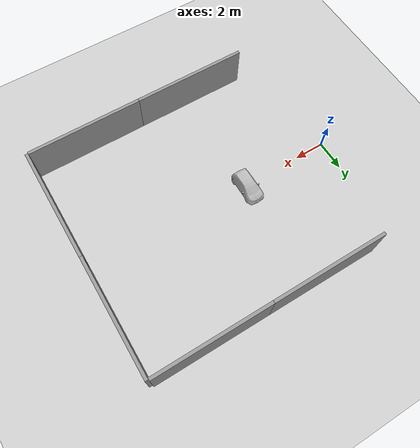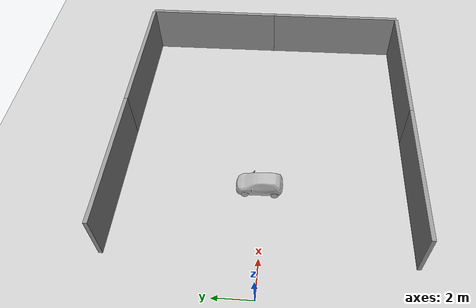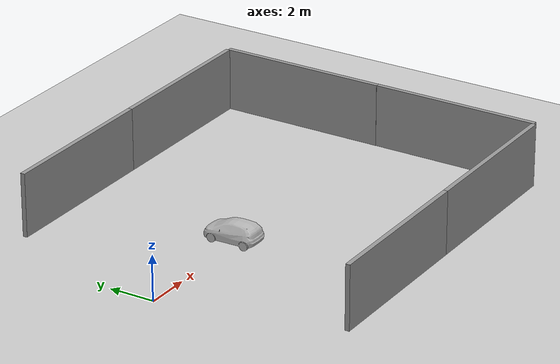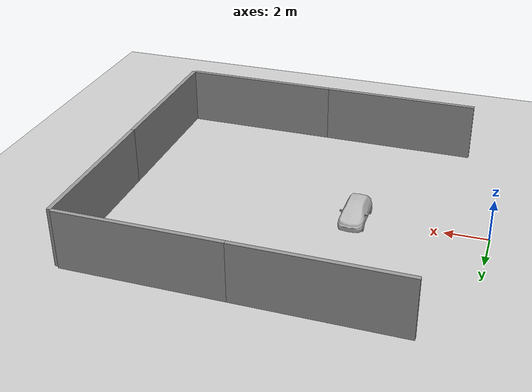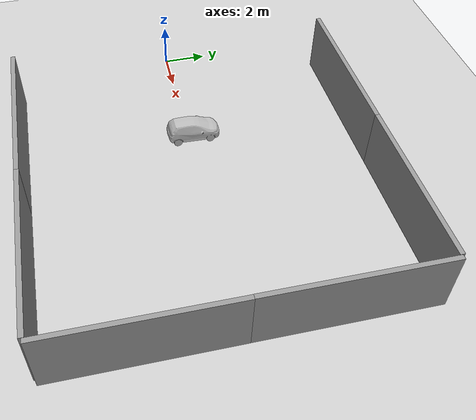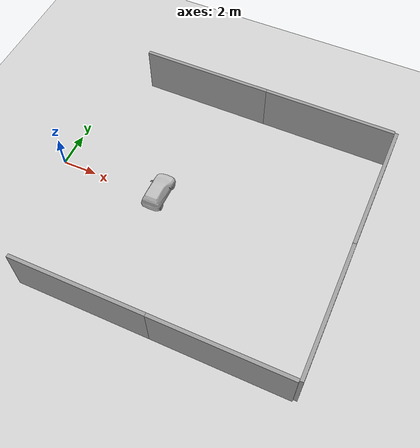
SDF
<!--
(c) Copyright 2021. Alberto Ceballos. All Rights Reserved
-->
<?xml version="1.0" ?>

<sdf version="1.6">

   <world name="depth_world">

      <!-- Ground base -->

      <include>
         <uri>model://ground_plane</uri>
	 <name>ground_plane</name>
	 <pose>9 0 0 0 0 0</pose>
      </include>

      <!-- Ground base -->

      <!-- Walls -->

      <include>
         <uri>model://grey_wall</uri>
	 <name>wall_1</name>
	 <pose>17 3.75 0 0 0 1.57</pose>
      </include>

      <include>
         <uri>model://grey_wall</uri>
	 <name>wall_2</name>
	 <pose>17 -3.75 0 0 0 1.57</pose>
      </include>

      <include>
         <uri>model://grey_wall</uri>
	 <name>wall_3</name>
	 <pose>13.14 -7.5 0 0 0 0</pose>
      </include>

      <include>
         <uri>model://grey_wall</uri>
	 <name>wall_4</name>
	 <pose>13.14 7.5 0 0 0 0</pose>
      </include>

      <include>
         <uri>model://grey_wall</uri>
	 <name>wall_5</name>
	 <pose>5.64 -7.5 0 0 0 0</pose>
      </include>

      <include>
         <uri>model://grey_wall</uri>
	 <name>wall_6</name>
	 <pose>5.64 7.5 0 0 0 0</pose>
      </include>

      <!-- Walls -->

      <!-- Obstacles = People -->

      <include>
         <uri>model://hatchback_red</uri>
	 <name>hatchback_red</name>
	 <pose>6 0 0 0 0 1.57</pose>
      </include>

      <!-- Obstacles = Boxes -->

      <!-- Ilumination -->

      <light type="directional" name="sun">
    	<cast_shadows>false</cast_shadows>
    	<pose>0 0 10 0 0 0</pose>
    	<diffuse>0.8 0.8 0.8 1</diffuse>
    	<specular>0.2 0.2 0.2 1</specular>
    	<attenuation>
      		<range>1000</range>
      		<constant>0.9</constant>
      		<linear>0.01</linear>
      		<quadratic>0.001</quadratic>
    	</attenuation>
    	<direction>-0.5 0.1 -0.9</direction>
      </light>

      <!-- Ilumination -->

   </world>

</sdf>

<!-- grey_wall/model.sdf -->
<sdf version="1.5">
  <model name="grey_wall">
    <static>true</static>
    <link name="link">
      <pose>0 0 1.4 0 0 0</pose>
      <collision name="collision">
        <geometry>
          <box>
            <size>7.5 0.2 2.8</size>
          </box>
        </geometry>
      </collision>
      <visual name="visual">
        <cast_shadows>false</cast_shadows>
        <geometry>
          <box>
            <size>7.5 0.2 2.8</size>
          </box>
        </geometry>
        <material>
          <script>
            <uri>model://../model_source/models/grey_wall/materials/scripts</uri>
            <uri>model://../model_source/models/grey_wall/materials/textures</uri>
            <name>vrc/grey_wall</name>
          </script>
        </material>
      </visual>
    </link>
  </model>
</sdf>

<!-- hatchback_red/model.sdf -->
<sdf version="1.6">
  <model name="hatchback_red">
    <static>true</static>
    <link name="link">
      <collision name="collision">
        <pose>0 0 0 0 0 1.57079632679</pose>
        <geometry>
          <mesh>
            <scale>0.0154 0.0154 0.154</scale>
            <uri>model://hatchback_red/meshes/hatchback.obj</uri>
          </mesh>
        </geometry>
      </collision>
      <visual name="visual">
        <pose>0 0 0 0 0 1.57079632679</pose>
        <geometry>
          <mesh>
            <scale>0.0154 0.0154 0.0154</scale>
            <uri>model://hatchback_red/meshes/hatchback.obj</uri>
          </mesh>
        </geometry>
      </visual>
    </link>
  </model>
</sdf>
